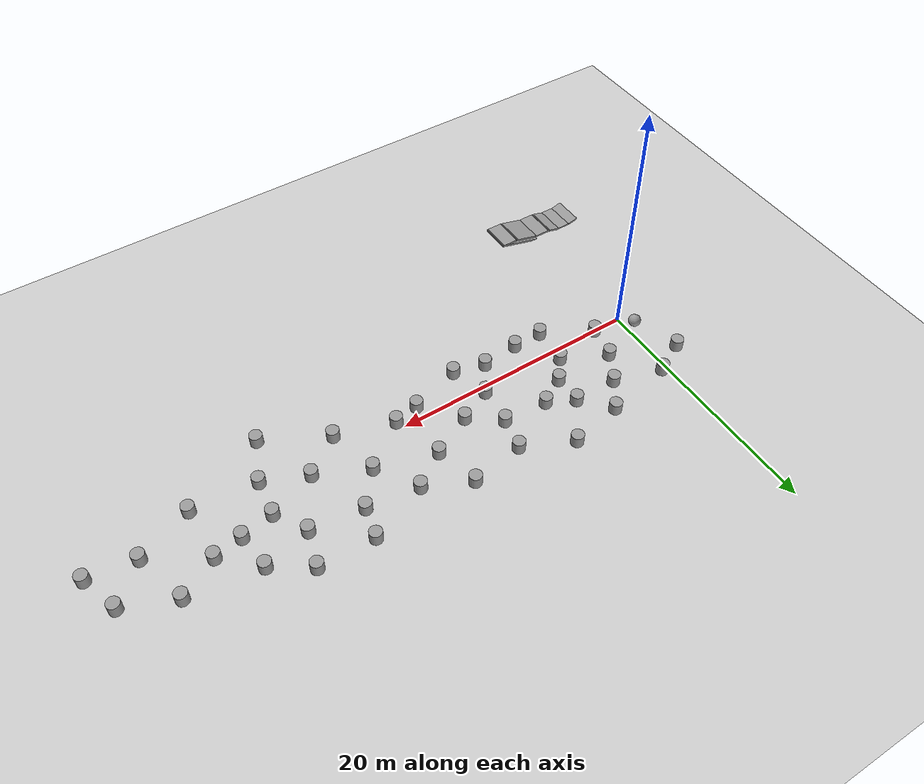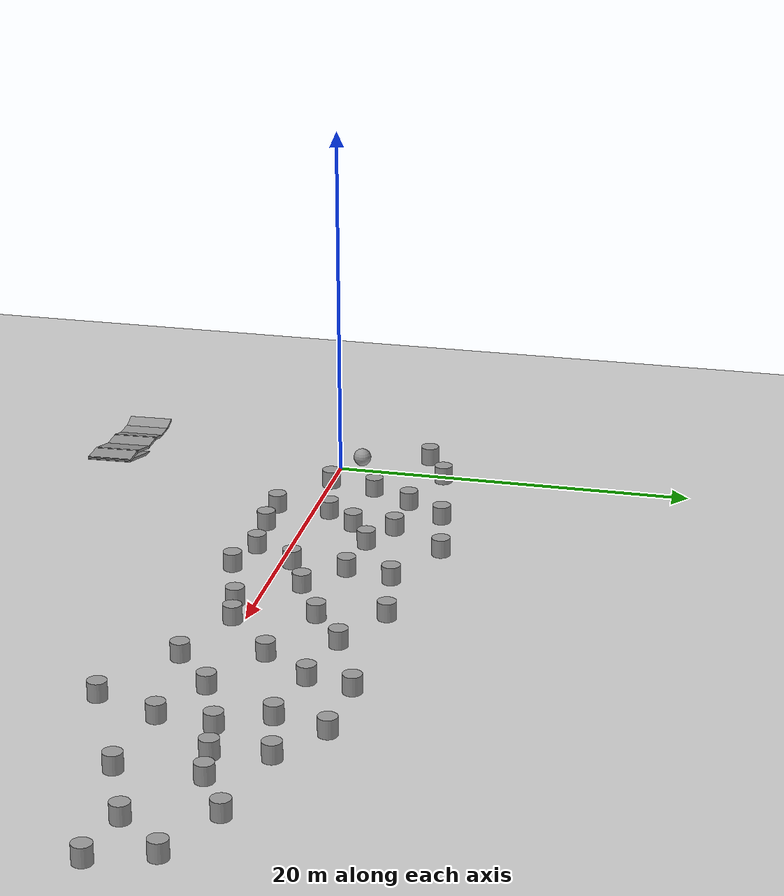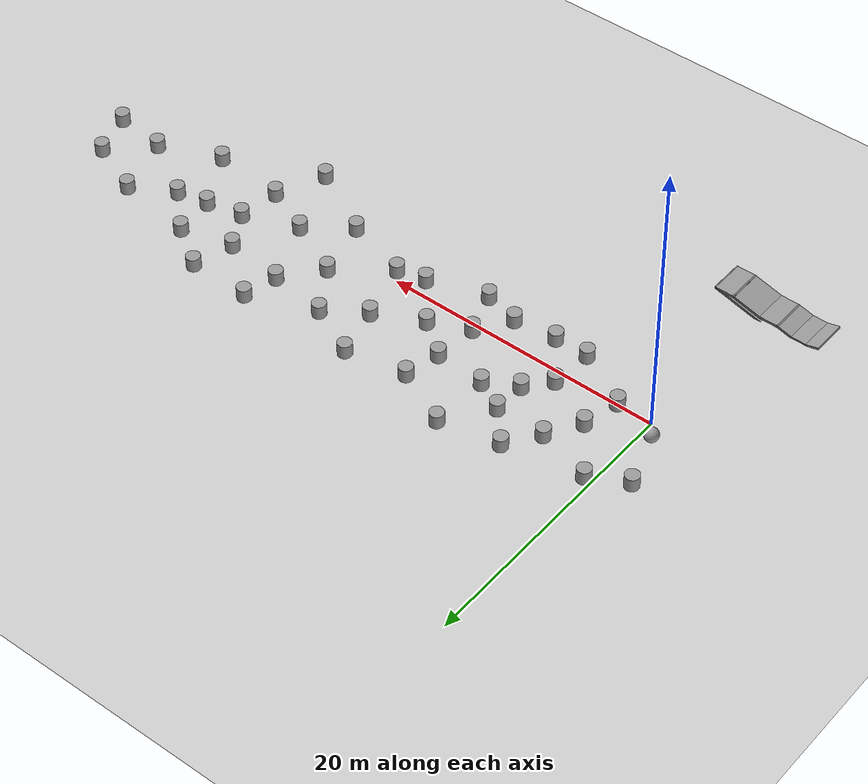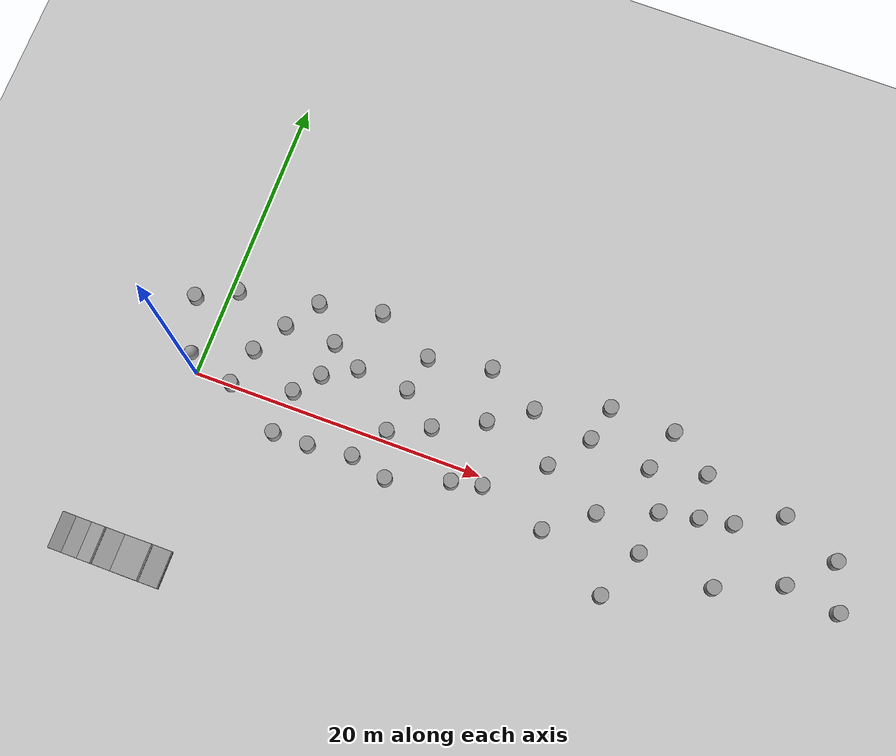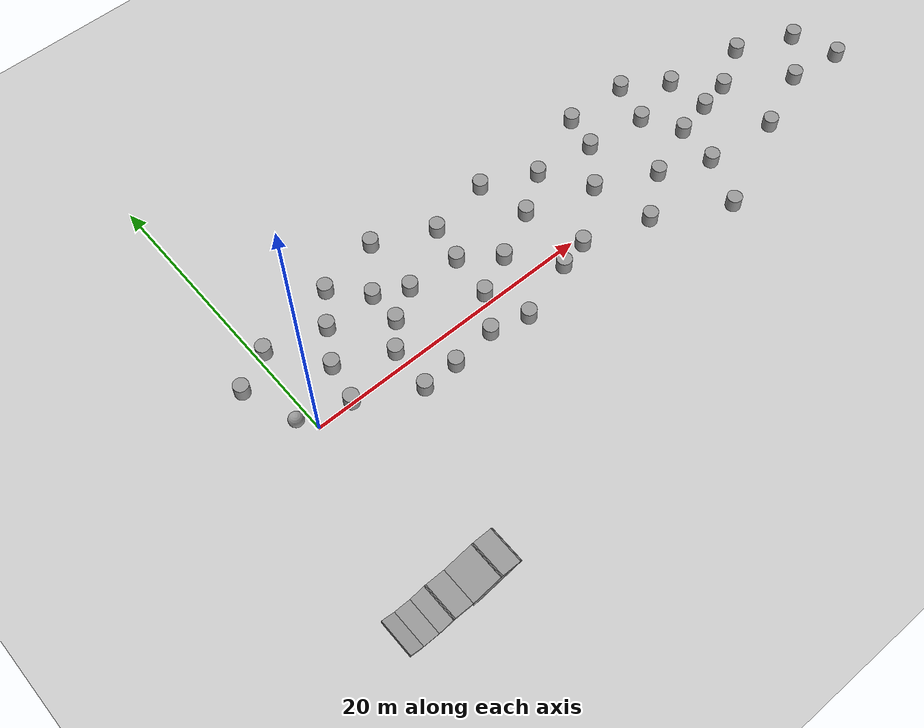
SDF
<sdf version="1.6">
 <world name="default">
  <light name="sun" type="directional">
   <pose>0 0 10 0 -0 0</pose>
   <diffuse>0.8 0.8 0.8 1</diffuse>
   <specular>0.2 0.2 0.2 1</specular>
   <attenuation>
    <range>1000</range>
    <constant>0.9</constant>
    <linear>0.01</linear>
    <quadratic>0.001</quadratic>
   </attenuation>
   <direction>-0.5 0.1 -0.9</direction>
  </light>
  <model name="ground_plane">
   <static>1</static>
   <link name="link">
    <collision name="collision">
     <geometry><plane><normal>0 0 1</normal><size>100 100</size></plane></geometry>
     <surface>
      <contact><collide_bitmask>65535</collide_bitmask></contact>
      <friction><ode><mu>100</mu><mu2>50</mu2></ode></friction>
     </surface>
    </collision>
    <visual name="visual">
     <cast_shadows>0</cast_shadows>
     <geometry><plane><normal>0 0 1</normal><size>100 100</size></plane></geometry>
     <material>
      <script><uri>file://media/materials/scripts/gazebo.material</uri><name>Gazebo/Grey</name></script>
     </material>
    </visual>
   </link>
  </model>
  <gravity>0 0 -9.8</gravity>
  <magnetic_field>6e-06 2.3e-05 -4.2e-05</magnetic_field>
  <atmosphere type="adiabatic"/>
  <physics name="default_physics" default="0" type="ode">
   <max_step_size>0.001</max_step_size>
   <real_time_factor>1</real_time_factor>
   <real_time_update_rate>1000</real_time_update_rate>
  </physics>
  <scene><ambient>0.4 0.4 0.4 1</ambient><background>0.7 0.7 0.7 1</background><shadows>1</shadows></scene>
  <audio><device>default</device></audio>
  <spherical_coordinates>
   <surface_model>EARTH_WGS84</surface_model>
   <latitude_deg>0</latitude_deg>
   <longitude_deg>0</longitude_deg>
   <elevation>0</elevation>
   <heading_deg>0</heading_deg>
  </spherical_coordinates>
  <model name="unit_sphere">
   <pose>-0.783877 1.10324 0.5 0 -0 0</pose>
   <link name="link">
    <inertial>
     <mass>1</mass>
     <inertia><ixx>0.1</ixx><ixy>0</ixy><ixz>0</ixz><iyy>0.1</iyy><iyz>0</iyz><izz>0.1</izz></inertia>
    </inertial>
    <collision name="collision"><geometry><sphere><radius>0.5</radius></sphere></geometry></collision>
    <visual name="visual">
     <geometry><sphere><radius>0.5</radius></sphere></geometry>
     <material>
      <script><name>Gazebo/Grey</name><uri>file://media/materials/scripts/gazebo.material</uri></script>
     </material>
    </visual>
   </link>
  </model>
  <model name="dekoboko">
   <pose>-0.597422 -11.4899 -0.174936 1.58336 -0 0</pose>
   <link name="Wall_0">
    <collision name="Wall_0_Collision">
     <geometry><box><size>1 0.15 2.5</size></box></geometry>
     <pose>0 0 1.25 0 -0 0</pose>
    </collision>
    <visual name="Wall_0_Visual">
     <pose>0 0 1.25 0 -0 0</pose>
     <geometry><box><size>1 0.15 2.5</size></box></geometry>
     <material>
      <script><uri>file://media/materials/scripts/gazebo.material</uri><name>Gazebo/Grey</name></script>
      <ambient>1 1 1 1</ambient>
     </material>
     <meta><layer>0</layer></meta>
    </visual>
    <pose>-3.44548 0.26529 0 0 -0 -0.261799</pose>
   </link>
   <link name="Wall_1">
    <collision name="Wall_1_Collision">
     <geometry><box><size>1.25 0.15 2.5</size></box></geometry>
     <pose>0 0 1.25 0 -0 0</pose>
    </collision>
    <visual name="Wall_1_Visual">
     <pose>0 0 1.25 0 -0 0</pose>
     <geometry><box><size>1.25 0.15 2.5</size></box></geometry>
     <material>
      <script><uri>file://media/materials/scripts/gazebo.material</uri><name>Gazebo/Grey</name></script>
      <ambient>1 1 1 1</ambient>
     </material>
     <meta><layer>0</layer></meta>
    </visual>
    <pose>-2.48496 0.155292 0 0 -0 0</pose>
   </link>
   <link name="Wall_2">
    <collision name="Wall_2_Collision">
     <geometry><box><size>1.25 0.15 2.5</size></box></geometry>
     <pose>0 0 1.25 0 -0 0</pose>
    </collision>
    <visual name="Wall_2_Visual">
     <pose>0 0 1.25 0 -0 0</pose>
     <geometry><box><size>1.25 0.15 2.5</size></box></geometry>
     <material>
      <script><uri>file://media/materials/scripts/gazebo.material</uri><name>Gazebo/Grey</name></script>
      <ambient>1 1 1 1</ambient>
     </material>
     <meta><layer>0</layer></meta>
    </visual>
    <pose>-1.4037 0.297642 0 0 -0 0.261799</pose>
   </link>
   <link name="Wall_3">
    <collision name="Wall_3_Collision">
     <geometry><box><size>1.5 0.15 2.5</size></box></geometry>
     <pose>0 0 1.25 0 -0 0</pose>
    </collision>
    <visual name="Wall_3_Visual">
     <pose>0 0 1.25 0 -0 0</pose>
     <geometry><box><size>1.5 0.15 2.5</size></box></geometry>
     <material>
      <script><uri>file://media/materials/scripts/gazebo.material</uri><name>Gazebo/Grey</name></script>
      <ambient>1 1 1 1</ambient>
     </material>
     <meta><layer>0</layer></meta>
    </visual>
    <pose>-0.197445 0.439993 0 0 -0 0</pose>
   </link>
   <link name="Wall_4">
    <collision name="Wall_4_Collision">
     <geometry><box><size>2.25 0.15 2.5</size></box></geometry>
     <pose>0 0 1.25 0 -0 0</pose>
    </collision>
    <visual name="Wall_4_Visual">
     <pose>0 0 1.25 0 -0 0</pose>
     <geometry><box><size>2.25 0.15 2.5</size></box></geometry>
     <material>
      <script><uri>file://media/materials/scripts/gazebo.material</uri><name>Gazebo/Grey</name></script>
      <ambient>1 1 1 1</ambient>
     </material>
     <meta><layer>0</layer></meta>
    </visual>
    <pose>1.49178 0.711753 0 0 -0 0.261799</pose>
   </link>
   <link name="Wall_5">
    <collision name="Wall_5_Collision">
     <geometry><box><size>1.5 0.15 2.5</size></box></geometry>
     <pose>0 0 1.25 0 -0 0</pose>
    </collision>
    <visual name="Wall_5_Visual">
     <pose>0 0 1.25 0 -0 0</pose>
     <geometry><box><size>1.5 0.15 2.5</size></box></geometry>
     <material>
      <script><uri>file://media/materials/scripts/gazebo.material</uri><name>Gazebo/Grey</name></script>
      <ambient>1 1 1 1</ambient>
     </material>
     <meta><layer>0</layer></meta>
    </visual>
    <pose>3.181 0.983513 0 0 -0 0</pose>
   </link>
   <link name="Wall_6">
    <collision name="Wall_6_Collision">
     <geometry><box><size>7.75 0.15 2.5</size></box></geometry>
     <pose>0 0 1.25 0 -0 0</pose>
    </collision>
    <visual name="Wall_6_Visual">
     <pose>0 0 1.25 0 -0 0</pose>
     <geometry><box><size>7.75 0.15 2.5</size></box></geometry>
     <material>
      <script><uri>file://media/materials/scripts/gazebo.material</uri><name>Gazebo/Grey</name></script>
      <ambient>0 0 0 1</ambient>
     </material>
     <meta><layer>0</layer></meta>
    </visual>
    <pose>0.185481 0 0 0 -0 -2.87979</pose>
   </link>
   <static>1</static>
  </model>
  <model name="unit_cylinder">
   <pose>-2.02028 4.80846 0.499997 4e-06 3e-06 -0</pose>
   <link name="link">
    <inertial>
     <mass>1</mass>
     <inertia><ixx>0.145833</ixx><ixy>0</ixy><ixz>0</ixz><iyy>0.145833</iyy><iyz>0</iyz><izz>0.125</izz></inertia>
    </inertial>
    <collision name="collision">
     <geometry><cylinder><radius>0.5</radius><length>1</length></cylinder></geometry>
    </collision>
    <visual name="visual">
     <geometry><cylinder><radius>0.5</radius><length>1</length></cylinder></geometry>
     <material>
      <script><name>Gazebo/Grey</name><uri>file://media/materials/scripts/gazebo.material</uri></script>
     </material>
    </visual>
   </link>
  </model>
  <model name="unit_cylinder_0">
   <pose>3.04541 2.71172 0.499997 4e-06 3e-06 -0</pose>
   <link name="link">
    <inertial>
     <mass>1</mass>
     <inertia><ixx>0.145833</ixx><ixy>0</ixy><ixz>0</ixz><iyy>0.145833</iyy><iyz>0</iyz><izz>0.125</izz></inertia>
    </inertial>
    <collision name="collision">
     <geometry><cylinder><radius>0.5</radius><length>1</length></cylinder></geometry>
    </collision>
    <visual name="visual">
     <geometry><cylinder><radius>0.5</radius><length>1</length></cylinder></geometry>
     <material>
      <script><name>Gazebo/Grey</name><uri>file://media/materials/scripts/gazebo.material</uri></script>
     </material>
    </visual>
   </link>
  </model>
  <model name="unit_cylinder_1">
   <pose>2.4754 0.085511 0.499997 4e-06 3e-06 -0</pose>
   <link name="link">
    <inertial>
     <mass>1</mass>
     <inertia><ixx>0.145833</ixx><ixy>0</ixy><ixz>0</ixz><iyy>0.145833</iyy><iyz>0</iyz><izz>0.125</izz></inertia>
    </inertial>
    <collision name="collision">
     <geometry><cylinder><radius>0.5</radius><length>1</length></cylinder></geometry>
    </collision>
    <visual name="visual">
     <geometry><cylinder><radius>0.5</radius><length>1</length></cylinder></geometry>
     <material>
      <script><name>Gazebo/Grey</name><uri>file://media/materials/scripts/gazebo.material</uri></script>
     </material>
    </visual>
   </link>
  </model>
  <model name="unit_cylinder_2">
   <pose>6.53973 0.993908 0.499994 -3e-06 -2e-06 0</pose>
   <link name="link">
    <inertial>
     <mass>1</mass>
     <inertia><ixx>0.145833</ixx><ixy>0</ixy><ixz>0</ixz><iyy>0.145833</iyy><iyz>0</iyz><izz>0.125</izz></inertia>
    </inertial>
    <collision name="collision">
     <geometry><cylinder><radius>0.5</radius><length>1</length></cylinder></geometry>
    </collision>
    <visual name="visual">
     <geometry><cylinder><radius>0.5</radius><length>1</length></cylinder></geometry>
     <material>
      <script><name>Gazebo/Grey</name><uri>file://media/materials/scripts/gazebo.material</uri></script>
     </material>
    </visual>
   </link>
  </model>
  <model name="unit_cylinder_3">
   <pose>6.33768 -2.01843 0.499997 4e-06 4e-06 -0</pose>
   <link name="link">
    <inertial>
     <mass>1</mass>
     <inertia><ixx>0.145833</ixx><ixy>0</ixy><ixz>0</ixz><iyy>0.145833</iyy><iyz>0</iyz><izz>0.125</izz></inertia>
    </inertial>
    <collision name="collision">
     <geometry><cylinder><radius>0.5</radius><length>1</length></cylinder></geometry>
    </collision>
    <visual name="visual">
     <geometry><cylinder><radius>0.5</radius><length>1</length></cylinder></geometry>
     <material>
      <script><name>Gazebo/Grey</name><uri>file://media/materials/scripts/gazebo.material</uri></script>
     </material>
    </visual>
   </link>
  </model>
  <model name="unit_cylinder_4">
   <pose>0.526894 6.13523 0.499998 3e-06 4e-06 -0</pose>
   <link name="link">
    <inertial>
     <mass>1</mass>
     <inertia><ixx>0.145833</ixx><ixy>0</ixy><ixz>0</ixz><iyy>0.145833</iyy><iyz>0</iyz><izz>0.125</izz></inertia>
    </inertial>
    <collision name="collision">
     <geometry><cylinder><radius>0.5</radius><length>1</length></cylinder></geometry>
    </collision>
    <visual name="visual">
     <geometry><cylinder><radius>0.5</radius><length>1</length></cylinder></geometry>
     <material>
      <script><name>Gazebo/Grey</name><uri>file://media/materials/scripts/gazebo.material</uri></script>
     </material>
    </visual>
   </link>
  </model>
  <model name="unit_cylinder_5">
   <pose>7.90174 2.66762 0.499998 3e-06 4e-06 -0</pose>
   <link name="link">
    <inertial>
     <mass>1</mass>
     <inertia><ixx>0.145833</ixx><ixy>0</ixy><ixz>0</ixz><iyy>0.145833</iyy><iyz>0</iyz><izz>0.125</izz></inertia>
    </inertial>
    <collision name="collision">
     <geometry><cylinder><radius>0.5</radius><length>1</length></cylinder></geometry>
    </collision>
    <visual name="visual">
     <geometry><cylinder><radius>0.5</radius><length>1</length></cylinder></geometry>
     <material>
      <script><name>Gazebo/Grey</name><uri>file://media/materials/scripts/gazebo.material</uri></script>
     </material>
    </visual>
   </link>
  </model>
  <model name="unit_cylinder_6">
   <pose>11.7716 -1.67653 0.5 0 -0 0</pose>
   <link name="link">
    <inertial>
     <mass>1</mass>
     <inertia><ixx>0.145833</ixx><ixy>0</ixy><ixz>0</ixz><iyy>0.145833</iyy><iyz>0</iyz><izz>0.125</izz></inertia>
    </inertial>
    <collision name="collision">
     <geometry><cylinder><radius>0.5</radius><length>1</length></cylinder></geometry>
    </collision>
    <visual name="visual">
     <geometry><cylinder><radius>0.5</radius><length>1</length></cylinder></geometry>
     <material>
      <script><name>Gazebo/Grey</name><uri>file://media/materials/scripts/gazebo.material</uri></script>
     </material>
    </visual>
   </link>
  </model>
  <model name="unit_cylinder_7">
   <pose>4.42442 5.0013 0.499992 -3e-06 -4e-06 -0</pose>
   <link name="link">
    <inertial>
     <mass>1</mass>
     <inertia><ixx>0.145833</ixx><ixy>0</ixy><ixz>0</ixz><iyy>0.145833</iyy><iyz>0</iyz><izz>0.125</izz></inertia>
    </inertial>
    <collision name="collision">
     <geometry><cylinder><radius>0.5</radius><length>1</length></cylinder></geometry>
    </collision>
    <visual name="visual">
     <geometry><cylinder><radius>0.5</radius><length>1</length></cylinder></geometry>
     <material>
      <script><name>Gazebo/Grey</name><uri>file://media/materials/scripts/gazebo.material</uri></script>
     </material>
    </visual>
   </link>
  </model>
  <model name="unit_cylinder_8">
   <pose>5.96834 7.18877 0.499994 -3e-06 -3e-06 0</pose>
   <link name="link">
    <inertial>
     <mass>1</mass>
     <inertia><ixx>0.145833</ixx><ixy>0</ixy><ixz>0</ixz><iyy>0.145833</iyy><iyz>0</iyz><izz>0.125</izz></inertia>
    </inertial>
    <collision name="collision">
     <geometry><cylinder><radius>0.5</radius><length>1</length></cylinder></geometry>
    </collision>
    <visual name="visual">
     <geometry><cylinder><radius>0.5</radius><length>1</length></cylinder></geometry>
     <material>
      <script><name>Gazebo/Grey</name><uri>file://media/materials/scripts/gazebo.material</uri></script>
     </material>
    </visual>
   </link>
  </model>
  <model name="unit_cylinder_9">
   <pose>8.75055 -1.99803 0.499994 -4e-06 -3e-06 -0</pose>
   <link name="link">
    <inertial>
     <mass>1</mass>
     <inertia><ixx>0.145833</ixx><ixy>0</ixy><ixz>0</ixz><iyy>0.145833</iyy><iyz>0</iyz><izz>0.125</izz></inertia>
    </inertial>
    <collision name="collision">
     <geometry><cylinder><radius>0.5</radius><length>1</length></cylinder></geometry>
    </collision>
    <visual name="visual">
     <geometry><cylinder><radius>0.5</radius><length>1</length></cylinder></geometry>
     <material>
      <script><name>Gazebo/Grey</name><uri>file://media/materials/scripts/gazebo.material</uri></script>
     </material>
    </visual>
   </link>
  </model>
  <model name="unit_cylinder_10">
   <pose>10.0255 3.91075 0.499996 4e-06 3e-06 -0</pose>
   <link name="link">
    <inertial>
     <mass>1</mass>
     <inertia><ixx>0.145833</ixx><ixy>0</ixy><ixz>0</ixz><iyy>0.145833</iyy><iyz>0</iyz><izz>0.125</izz></inertia>
    </inertial>
    <collision name="collision">
     <geometry><cylinder><radius>0.5</radius><length>1</length></cylinder></geometry>
    </collision>
    <visual name="visual">
     <geometry><cylinder><radius>0.5</radius><length>1</length></cylinder></geometry>
     <material>
      <script><name>Gazebo/Grey</name><uri>file://media/materials/scripts/gazebo.material</uri></script>
     </material>
    </visual>
   </link>
  </model>
  <model name="unit_cylinder_11">
   <pose>13.2875 0.643056 0.499994 -4e-06 -3e-06 -0</pose>
   <link name="link">
    <inertial>
     <mass>1</mass>
     <inertia><ixx>0.145833</ixx><ixy>0</ixy><ixz>0</ixz><iyy>0.145833</iyy><iyz>0</iyz><izz>0.125</izz></inertia>
    </inertial>
    <collision name="collision">
     <geometry><cylinder><radius>0.5</radius><length>1</length></cylinder></geometry>
    </collision>
    <visual name="visual">
     <geometry><cylinder><radius>0.5</radius><length>1</length></cylinder></geometry>
     <material>
      <script><name>Gazebo/Grey</name><uri>file://media/materials/scripts/gazebo.material</uri></script>
     </material>
    </visual>
   </link>
  </model>
  <model name="unit_cylinder_12">
   <pose>7.93966 4.99739 0.499994 -4e-06 -3e-06 -0</pose>
   <link name="link">
    <inertial>
     <mass>1</mass>
     <inertia><ixx>0.145833</ixx><ixy>0</ixy><ixz>0</ixz><iyy>0.145833</iyy><iyz>0</iyz><izz>0.125</izz></inertia>
    </inertial>
    <collision name="collision">
     <geometry><cylinder><radius>0.5</radius><length>1</length></cylinder></geometry>
    </collision>
    <visual name="visual">
     <geometry><cylinder><radius>0.5</radius><length>1</length></cylinder></geometry>
     <material>
      <script><name>Gazebo/Grey</name><uri>file://media/materials/scripts/gazebo.material</uri></script>
     </material>
    </visual>
   </link>
  </model>
  <model name="unit_cylinder_13">
   <pose>14.2873 -2.32781 0.499996 3e-06 3e-06 0</pose>
   <link name="link">
    <inertial>
     <mass>1</mass>
     <inertia><ixx>0.145833</ixx><ixy>0</ixy><ixz>0</ixz><iyy>0.145833</iyy><iyz>0</iyz><izz>0.125</izz></inertia>
    </inertial>
    <collision name="collision">
     <geometry><cylinder><radius>0.5</radius><length>1</length></cylinder></geometry>
    </collision>
    <visual name="visual">
     <geometry><cylinder><radius>0.5</radius><length>1</length></cylinder></geometry>
     <material>
      <script><name>Gazebo/Grey</name><uri>file://media/materials/scripts/gazebo.material</uri></script>
     </material>
    </visual>
   </link>
  </model>
  <model name="unit_cylinder_14">
   <pose>13.5792 3.69045 0.499996 -3e-06 3e-06 0</pose>
   <link name="link">
    <inertial>
     <mass>1</mass>
     <inertia><ixx>0.145833</ixx><ixy>0</ixy><ixz>0</ixz><iyy>0.145833</iyy><iyz>0</iyz><izz>0.125</izz></inertia>
    </inertial>
    <collision name="collision">
     <geometry><cylinder><radius>0.5</radius><length>1</length></cylinder></geometry>
    </collision>
    <visual name="visual">
     <geometry><cylinder><radius>0.5</radius><length>1</length></cylinder></geometry>
     <material>
      <script><name>Gazebo/Grey</name><uri>file://media/materials/scripts/gazebo.material</uri></script>
     </material>
    </visual>
   </link>
  </model>
  <model name="unit_cylinder_15">
   <pose>14.1 6.21526 0.499998 3e-06 -2e-06 0</pose>
   <link name="link">
    <inertial>
     <mass>1</mass>
     <inertia><ixx>0.145833</ixx><ixy>0</ixy><ixz>0</ixz><iyy>0.145833</iyy><iyz>0</iyz><izz>0.125</izz></inertia>
    </inertial>
    <collision name="collision">
     <geometry><cylinder><radius>0.5</radius><length>1</length></cylinder></geometry>
    </collision>
    <visual name="visual">
     <geometry><cylinder><radius>0.5</radius><length>1</length></cylinder></geometry>
     <material>
      <script><name>Gazebo/Grey</name><uri>file://media/materials/scripts/gazebo.material</uri></script>
     </material>
    </visual>
   </link>
  </model>
  <model name="unit_cylinder_16">
   <pose>15.9655 1.88447 0.499998 3e-06 -2e-06 0</pose>
   <link name="link">
    <inertial>
     <mass>1</mass>
     <inertia><ixx>0.145833</ixx><ixy>0</ixy><ixz>0</ixz><iyy>0.145833</iyy><iyz>0</iyz><izz>0.125</izz></inertia>
    </inertial>
    <collision name="collision">
     <geometry><cylinder><radius>0.5</radius><length>1</length></cylinder></geometry>
    </collision>
    <visual name="visual">
     <geometry><cylinder><radius>0.5</radius><length>1</length></cylinder></geometry>
     <material>
      <script><name>Gazebo/Grey</name><uri>file://media/materials/scripts/gazebo.material</uri></script>
     </material>
    </visual>
   </link>
  </model>
  <model name="unit_cylinder_17">
   <pose>10.1938 8.0524 0.499998 3e-06 -2e-06 0</pose>
   <link name="link">
    <inertial>
     <mass>1</mass>
     <inertia><ixx>0.145833</ixx><ixy>0</ixy><ixz>0</ixz><iyy>0.145833</iyy><iyz>0</iyz><izz>0.125</izz></inertia>
    </inertial>
    <collision name="collision">
     <geometry><cylinder><radius>0.5</radius><length>1</length></cylinder></geometry>
    </collision>
    <visual name="visual">
     <geometry><cylinder><radius>0.5</radius><length>1</length></cylinder></geometry>
     <material>
      <script><name>Gazebo/Grey</name><uri>file://media/materials/scripts/gazebo.material</uri></script>
     </material>
    </visual>
   </link>
  </model>
  <model name="unit_cylinder_18">
   <pose>20.4052 -0.581168 0.499998 3e-06 -2e-06 0</pose>
   <link name="link">
    <inertial>
     <mass>1</mass>
     <inertia><ixx>0.145833</ixx><ixy>0</ixy><ixz>0</ixz><iyy>0.145833</iyy><iyz>0</iyz><izz>0.125</izz></inertia>
    </inertial>
    <collision name="collision">
     <geometry><cylinder><radius>0.5</radius><length>1</length></cylinder></geometry>
    </collision>
    <visual name="visual">
     <geometry><cylinder><radius>0.5</radius><length>1</length></cylinder></geometry>
     <material>
      <script><name>Gazebo/Grey</name><uri>file://media/materials/scripts/gazebo.material</uri></script>
     </material>
    </visual>
   </link>
  </model>
  <model name="unit_cylinder_19">
   <pose>19.2344 3.5053 0.499992 -3e-06 2e-06 0</pose>
   <link name="link">
    <inertial>
     <mass>1</mass>
     <inertia><ixx>0.145833</ixx><ixy>0</ixy><ixz>0</ixz><iyy>0.145833</iyy><iyz>0</iyz><izz>0.125</izz></inertia>
    </inertial>
    <collision name="collision">
     <geometry><cylinder><radius>0.5</radius><length>1</length></cylinder></geometry>
    </collision>
    <visual name="visual">
     <geometry><cylinder><radius>0.5</radius><length>1</length></cylinder></geometry>
     <material>
      <script><name>Gazebo/Grey</name><uri>file://media/materials/scripts/gazebo.material</uri></script>
     </material>
    </visual>
   </link>
  </model>
  <model name="unit_cylinder_20">
   <pose>18.3851 -1.02614 0.499998 3e-06 -2e-06 0</pose>
   <link name="link">
    <inertial>
     <mass>1</mass>
     <inertia><ixx>0.145833</ixx><ixy>0</ixy><ixz>0</ixz><iyy>0.145833</iyy><iyz>0</iyz><izz>0.125</izz></inertia>
    </inertial>
    <collision name="collision">
     <geometry><cylinder><radius>0.5</radius><length>1</length></cylinder></geometry>
    </collision>
    <visual name="visual">
     <geometry><cylinder><radius>0.5</radius><length>1</length></cylinder></geometry>
     <material>
      <script><name>Gazebo/Grey</name><uri>file://media/materials/scripts/gazebo.material</uri></script>
     </material>
    </visual>
   </link>
  </model>
  <model name="unit_cylinder_21">
   <pose>21.8971 5.32432 0.499998 3e-06 -2e-06 0</pose>
   <link name="link">
    <inertial>
     <mass>1</mass>
     <inertia><ixx>0.145833</ixx><ixy>0</ixy><ixz>0</ixz><iyy>0.145833</iyy><iyz>0</iyz><izz>0.125</izz></inertia>
    </inertial>
    <collision name="collision">
     <geometry><cylinder><radius>0.5</radius><length>1</length></cylinder></geometry>
    </collision>
    <visual name="visual">
     <geometry><cylinder><radius>0.5</radius><length>1</length></cylinder></geometry>
     <material>
      <script><name>Gazebo/Grey</name><uri>file://media/materials/scripts/gazebo.material</uri></script>
     </material>
    </visual>
   </link>
  </model>
  <model name="unit_cylinder_22">
   <pose>24.9566 -1.96416 0.499998 3e-06 -3e-06 0</pose>
   <link name="link">
    <inertial>
     <mass>1</mass>
     <inertia><ixx>0.145833</ixx><ixy>0</ixy><ixz>0</ixz><iyy>0.145833</iyy><iyz>0</iyz><izz>0.125</izz></inertia>
    </inertial>
    <collision name="collision">
     <geometry><cylinder><radius>0.5</radius><length>1</length></cylinder></geometry>
    </collision>
    <visual name="visual">
     <geometry><cylinder><radius>0.5</radius><length>1</length></cylinder></geometry>
     <material>
      <script><name>Gazebo/Grey</name><uri>file://media/materials/scripts/gazebo.material</uri></script>
     </material>
    </visual>
   </link>
  </model>
  <model name="unit_cylinder_23">
   <pose>23.9402 2.13643 0.499998 3e-06 -3e-06 0</pose>
   <link name="link">
    <inertial>
     <mass>1</mass>
     <inertia><ixx>0.145833</ixx><ixy>0</ixy><ixz>0</ixz><iyy>0.145833</iyy><iyz>0</iyz><izz>0.125</izz></inertia>
    </inertial>
    <collision name="collision">
     <geometry><cylinder><radius>0.5</radius><length>1</length></cylinder></geometry>
    </collision>
    <visual name="visual">
     <geometry><cylinder><radius>0.5</radius><length>1</length></cylinder></geometry>
     <material>
      <script><name>Gazebo/Grey</name><uri>file://media/materials/scripts/gazebo.material</uri></script>
     </material>
    </visual>
   </link>
  </model>
  <model name="unit_cylinder_24">
   <pose>26.0124 4.75646 0.499993 -3e-06 3e-06 0</pose>
   <link name="link">
    <inertial>
     <mass>1</mass>
     <inertia><ixx>0.145833</ixx><ixy>0</ixy><ixz>0</ixz><iyy>0.145833</iyy><iyz>0</iyz><izz>0.125</izz></inertia>
    </inertial>
    <collision name="collision">
     <geometry><cylinder><radius>0.5</radius><length>1</length></cylinder></geometry>
    </collision>
    <visual name="visual">
     <geometry><cylinder><radius>0.5</radius><length>1</length></cylinder></geometry>
     <material>
      <script><name>Gazebo/Grey</name><uri>file://media/materials/scripts/gazebo.material</uri></script>
     </material>
    </visual>
   </link>
  </model>
  <model name="unit_cylinder_25">
   <pose>27.891 0.261248 0.499992 -3e-06 3e-06 0</pose>
   <link name="link">
    <inertial>
     <mass>1</mass>
     <inertia><ixx>0.145833</ixx><ixy>0</ixy><ixz>0</ixz><iyy>0.145833</iyy><iyz>0</iyz><izz>0.125</izz></inertia>
    </inertial>
    <collision name="collision">
     <geometry><cylinder><radius>0.5</radius><length>1</length></cylinder></geometry>
    </collision>
    <visual name="visual">
     <geometry><cylinder><radius>0.5</radius><length>1</length></cylinder></geometry>
     <material>
      <script><name>Gazebo/Grey</name><uri>file://media/materials/scripts/gazebo.material</uri></script>
     </material>
    </visual>
   </link>
  </model>
  <model name="unit_cylinder_26">
   <pose>29.8549 -4.60789 0.499998 3e-06 -3e-06 0</pose>
   <link name="link">
    <inertial>
     <mass>1</mass>
     <inertia><ixx>0.145833</ixx><ixy>0</ixy><ixz>0</ixz><iyy>0.145833</iyy><iyz>0</iyz><izz>0.125</izz></inertia>
    </inertial>
    <collision name="collision">
     <geometry><cylinder><radius>0.5</radius><length>1</length></cylinder></geometry>
    </collision>
    <visual name="visual">
     <geometry><cylinder><radius>0.5</radius><length>1</length></cylinder></geometry>
     <material>
      <script><name>Gazebo/Grey</name><uri>file://media/materials/scripts/gazebo.material</uri></script>
     </material>
    </visual>
   </link>
  </model>
  <model name="unit_cylinder_27">
   <pose>30.2002 4.24788 0.499998 3e-06 -3e-06 0</pose>
   <link name="link">
    <inertial>
     <mass>1</mass>
     <inertia><ixx>0.145833</ixx><ixy>0</ixy><ixz>0</ixz><iyy>0.145833</iyy><iyz>0</iyz><izz>0.125</izz></inertia>
    </inertial>
    <collision name="collision">
     <geometry><cylinder><radius>0.5</radius><length>1</length></cylinder></geometry>
    </collision>
    <visual name="visual">
     <geometry><cylinder><radius>0.5</radius><length>1</length></cylinder></geometry>
     <material>
      <script><name>Gazebo/Grey</name><uri>file://media/materials/scripts/gazebo.material</uri></script>
     </material>
    </visual>
   </link>
  </model>
  <model name="unit_cylinder_28">
   <pose>26.5714 7.18485 0.499998 3e-06 -4e-06 0</pose>
   <link name="link">
    <inertial>
     <mass>1</mass>
     <inertia><ixx>0.145833</ixx><ixy>0</ixy><ixz>0</ixz><iyy>0.145833</iyy><iyz>0</iyz><izz>0.125</izz></inertia>
    </inertial>
    <collision name="collision">
     <geometry><cylinder><radius>0.5</radius><length>1</length></cylinder></geometry>
    </collision>
    <visual name="visual">
     <geometry><cylinder><radius>0.5</radius><length>1</length></cylinder></geometry>
     <material>
      <script><name>Gazebo/Grey</name><uri>file://media/materials/scripts/gazebo.material</uri></script>
     </material>
    </visual>
   </link>
  </model>
  <model name="unit_cylinder_29">
   <pose>18.3739 6.98782 0.499998 3e-06 -4e-06 0</pose>
   <link name="link">
    <inertial>
     <mass>1</mass>
     <inertia><ixx>0.145833</ixx><ixy>0</ixy><ixz>0</ixz><iyy>0.145833</iyy><iyz>0</iyz><izz>0.125</izz></inertia>
    </inertial>
    <collision name="collision">
     <geometry><cylinder><radius>0.5</radius><length>1</length></cylinder></geometry>
    </collision>
    <visual name="visual">
     <geometry><cylinder><radius>0.5</radius><length>1</length></cylinder></geometry>
     <material>
      <script><name>Gazebo/Grey</name><uri>file://media/materials/scripts/gazebo.material</uri></script>
     </material>
    </visual>
   </link>
  </model>
  <model name="unit_cylinder_30">
   <pose>33.8726 5.16325 0.499998 4e-06 -4e-06 0</pose>
   <link name="link">
    <inertial>
     <mass>1</mass>
     <inertia><ixx>0.145833</ixx><ixy>0</ixy><ixz>0</ixz><iyy>0.145833</iyy><iyz>0</iyz><izz>0.125</izz></inertia>
    </inertial>
    <collision name="collision">
     <geometry><cylinder><radius>0.5</radius><length>1</length></cylinder></geometry>
    </collision>
    <visual name="visual">
     <geometry><cylinder><radius>0.5</radius><length>1</length></cylinder></geometry>
     <material>
      <script><name>Gazebo/Grey</name><uri>file://media/materials/scripts/gazebo.material</uri></script>
     </material>
    </visual>
   </link>
  </model>
  <model name="unit_cylinder_31">
   <pose>31.6498 1.72327 0.499998 3e-06 4e-06 -0</pose>
   <link name="link">
    <inertial>
     <mass>1</mass>
     <inertia><ixx>0.145833</ixx><ixy>0</ixy><ixz>0</ixz><iyy>0.145833</iyy><iyz>0</iyz><izz>0.125</izz></inertia>
    </inertial>
    <collision name="collision">
     <geometry><cylinder><radius>0.5</radius><length>1</length></cylinder></geometry>
    </collision>
    <visual name="visual">
     <geometry><cylinder><radius>0.5</radius><length>1</length></cylinder></geometry>
     <material>
      <script><name>Gazebo/Grey</name><uri>file://media/materials/scripts/gazebo.material</uri></script>
     </material>
    </visual>
   </link>
  </model>
  <model name="unit_cylinder_32">
   <pose>36.4397 2.68522 0.499992 -3e-06 -4e-06 -0</pose>
   <link name="link">
    <inertial>
     <mass>1</mass>
     <inertia><ixx>0.145833</ixx><ixy>0</ixy><ixz>0</ixz><iyy>0.145833</iyy><iyz>0</iyz><izz>0.125</izz></inertia>
    </inertial>
    <collision name="collision">
     <geometry><cylinder><radius>0.5</radius><length>1</length></cylinder></geometry>
    </collision>
    <visual name="visual">
     <geometry><cylinder><radius>0.5</radius><length>1</length></cylinder></geometry>
     <material>
      <script><name>Gazebo/Grey</name><uri>file://media/materials/scripts/gazebo.material</uri></script>
     </material>
    </visual>
   </link>
  </model>
  <model name="unit_cylinder_33">
   <pose>31.0008 7.07823 0.499997 3e-06 3e-06 0</pose>
   <link name="link">
    <inertial>
     <mass>1</mass>
     <inertia><ixx>0.145833</ixx><ixy>0</ixy><ixz>0</ixz><iyy>0.145833</iyy><iyz>0</iyz><izz>0.125</izz></inertia>
    </inertial>
    <collision name="collision">
     <geometry><cylinder><radius>0.5</radius><length>1</length></cylinder></geometry>
    </collision>
    <visual name="visual">
     <geometry><cylinder><radius>0.5</radius><length>1</length></cylinder></geometry>
     <material>
      <script><name>Gazebo/Grey</name><uri>file://media/materials/scripts/gazebo.material</uri></script>
     </material>
    </visual>
   </link>
  </model>
  <model name="unit_cylinder_34">
   <pose>31.2906 -1.21884 0.499997 3e-06 3e-06 0</pose>
   <link name="link">
    <inertial>
     <mass>1</mass>
     <inertia><ixx>0.145833</ixx><ixy>0</ixy><ixz>0</ixz><iyy>0.145833</iyy><iyz>0</iyz><izz>0.125</izz></inertia>
    </inertial>
    <collision name="collision">
     <geometry><cylinder><radius>0.5</radius><length>1</length></cylinder></geometry>
    </collision>
    <visual name="visual">
     <geometry><cylinder><radius>0.5</radius><length>1</length></cylinder></geometry>
     <material>
      <script><name>Gazebo/Grey</name><uri>file://media/materials/scripts/gazebo.material</uri></script>
     </material>
    </visual>
   </link>
  </model>
  <model name="unit_cylinder_35">
   <pose>34.209 2.25957 0.499993 -3e-06 -3e-06 0</pose>
   <link name="link">
    <inertial>
     <mass>1</mass>
     <inertia><ixx>0.145833</ixx><ixy>0</ixy><ixz>0</ixz><iyy>0.145833</iyy><iyz>0</iyz><izz>0.125</izz></inertia>
    </inertial>
    <collision name="collision">
     <geometry><cylinder><radius>0.5</radius><length>1</length></cylinder></geometry>
    </collision>
    <visual name="visual">
     <geometry><cylinder><radius>0.5</radius><length>1</length></cylinder></geometry>
     <material>
      <script><name>Gazebo/Grey</name><uri>file://media/materials/scripts/gazebo.material</uri></script>
     </material>
    </visual>
   </link>
  </model>
  <model name="unit_cylinder_36">
   <pose>39.4308 4.34094 0.499993 -3e-06 -4e-06 -0</pose>
   <link name="link">
    <inertial>
     <mass>1</mass>
     <inertia><ixx>0.145833</ixx><ixy>0</ixy><ixz>0</ixz><iyy>0.145833</iyy><iyz>0</iyz><izz>0.125</izz></inertia>
    </inertial>
    <collision name="collision">
     <geometry><cylinder><radius>0.5</radius><length>1</length></cylinder></geometry>
    </collision>
    <visual name="visual">
     <geometry><cylinder><radius>0.5</radius><length>1</length></cylinder></geometry>
     <material>
      <script><name>Gazebo/Grey</name><uri>file://media/materials/scripts/gazebo.material</uri></script>
     </material>
    </visual>
   </link>
  </model>
  <model name="unit_cylinder_37">
   <pose>36.4118 -1.66546 0.499997 3e-06 4e-06 -0</pose>
   <link name="link">
    <inertial>
     <mass>1</mass>
     <inertia><ixx>0.145833</ixx><ixy>0</ixy><ixz>0</ixz><iyy>0.145833</iyy><iyz>0</iyz><izz>0.125</izz></inertia>
    </inertial>
    <collision name="collision">
     <geometry><cylinder><radius>0.5</radius><length>1</length></cylinder></geometry>
    </collision>
    <visual name="visual">
     <geometry><cylinder><radius>0.5</radius><length>1</length></cylinder></geometry>
     <material>
      <script><name>Gazebo/Grey</name><uri>file://media/materials/scripts/gazebo.material</uri></script>
     </material>
    </visual>
   </link>
  </model>
  <model name="unit_cylinder_38">
   <pose>40.6867 0.073543 0.499997 3e-06 4e-06 -0</pose>
   <link name="link">
    <inertial>
     <mass>1</mass>
     <inertia><ixx>0.145833</ixx><ixy>0</ixy><ixz>0</ixz><iyy>0.145833</iyy><iyz>0</iyz><izz>0.125</izz></inertia>
    </inertial>
    <collision name="collision">
     <geometry><cylinder><radius>0.5</radius><length>1</length></cylinder></geometry>
    </collision>
    <visual name="visual">
     <geometry><cylinder><radius>0.5</radius><length>1</length></cylinder></geometry>
     <material>
      <script><name>Gazebo/Grey</name><uri>file://media/materials/scripts/gazebo.material</uri></script>
     </material>
    </visual>
   </link>
  </model>
  <model name="unit_cylinder_39">
   <pose>43.3406 2.66096 0.499997 3e-06 4e-06 -0</pose>
   <link name="link">
    <inertial>
     <mass>1</mass>
     <inertia><ixx>0.145833</ixx><ixy>0</ixy><ixz>0</ixz><iyy>0.145833</iyy><iyz>0</iyz><izz>0.125</izz></inertia>
    </inertial>
    <collision name="collision">
     <geometry><cylinder><radius>0.5</radius><length>1</length></cylinder></geometry>
    </collision>
    <visual name="visual">
     <geometry><cylinder><radius>0.5</radius><length>1</length></cylinder></geometry>
     <material>
      <script><name>Gazebo/Grey</name><uri>file://media/materials/scripts/gazebo.material</uri></script>
     </material>
    </visual>
   </link>
  </model>
  <model name="unit_cylinder_40">
   <pose>44.3939 -0.425375 0.499997 3e-06 4e-06 -0</pose>
   <link name="link">
    <inertial>
     <mass>1</mass>
     <inertia><ixx>0.145833</ixx><ixy>0</ixy><ixz>0</ixz><iyy>0.145833</iyy><iyz>0</iyz><izz>0.125</izz></inertia>
    </inertial>
    <collision name="collision">
     <geometry><cylinder><radius>0.5</radius><length>1</length></cylinder></geometry>
    </collision>
    <visual name="visual">
     <geometry><cylinder><radius>0.5</radius><length>1</length></cylinder></geometry>
     <material>
      <script><name>Gazebo/Grey</name><uri>file://media/materials/scripts/gazebo.material</uri></script>
     </material>
    </visual>
   </link>
  </model>
 </world>
</sdf>
